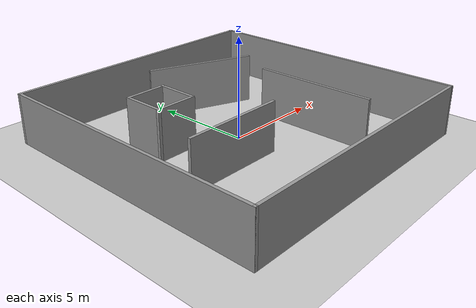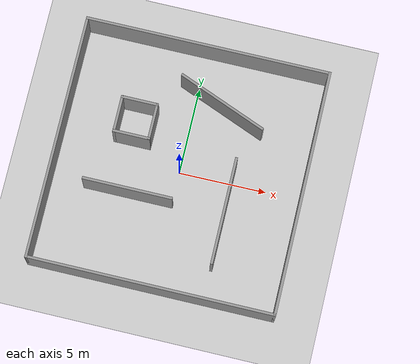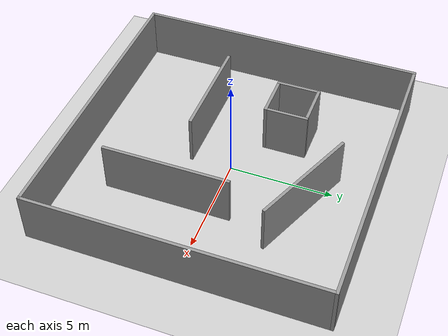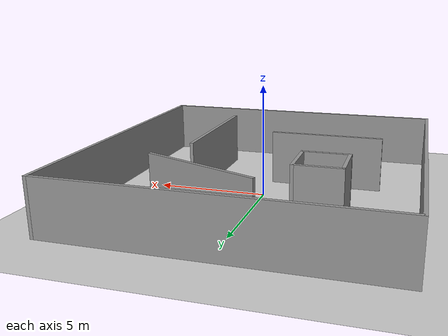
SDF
<sdf version="1.7">
 <world name="default">
  <light name="sun" type="directional">
   <pose>0 0 10 0 -0 0</pose>
   <diffuse>0.8 0.8 0.8 1</diffuse>
   <specular>0.2 0.2 0.2 1</specular>
   <attenuation>
    <range>1000</range>
    <constant>0.9</constant>
    <linear>0.01</linear>
    <quadratic>0.001</quadratic>
   </attenuation>
   <direction>-0.5 0.1 -0.9</direction>
   <spot><inner_angle>0</inner_angle><outer_angle>0</outer_angle><falloff>0</falloff></spot>
  </light>
  <model name="ground_plane">
   <static>1</static>
   <link name="link">
    <collision name="collision">
     <geometry><plane><normal>0 0 1</normal><size>100 100</size></plane></geometry>
     <surface><friction><ode><mu>100</mu><mu2>50</mu2></ode></friction></surface>
    </collision>
    <visual name="visual">
     <cast_shadows>0</cast_shadows>
     <geometry><plane><normal>0 0 1</normal><size>100 100</size></plane></geometry>
     <material>
      <script><uri>file://media/materials/scripts/gazebo.material</uri><name>Gazebo/Grey</name></script>
     </material>
    </visual>
   </link>
  </model>
  <gravity>0 0 -9.8</gravity>
  <magnetic_field>6e-06 2.3e-05 -4.2e-05</magnetic_field>
  <atmosphere type="adiabatic"/>
  <physics type="ode">
   <max_step_size>0.001</max_step_size>
   <real_time_factor>1</real_time_factor>
   <real_time_update_rate>1000</real_time_update_rate>
  </physics>
  <scene><ambient>0.4 0.4 0.4 1</ambient><background>0.7 0.7 0.7 1</background><shadows>1</shadows></scene>
  <audio><device>default</device></audio>
  <spherical_coordinates>
   <surface_model>EARTH_WGS84</surface_model>
   <latitude_deg>0</latitude_deg>
   <longitude_deg>0</longitude_deg>
   <elevation>0</elevation>
   <heading_deg>0</heading_deg>
  </spherical_coordinates>
  <model name="neurolab">
   <link name="Wall_11">
    <collision name="Wall_11_Collision">
     <geometry><box><size>2.15 0.15 2.5</size></box></geometry>
     <pose>0 0 1.25 0 -0 0</pose>
    </collision>
    <visual name="Wall_11_Visual">
     <pose>0 0 1.25 0 -0 0</pose>
     <geometry><box><size>2.15 0.15 2.5</size></box></geometry>
     <material>
      <script><uri>file://media/materials/scripts/gazebo.material</uri><name>Gazebo/Grey</name></script>
      <ambient>1 1 1 1</ambient>
     </material>
     <meta><layer>0</layer></meta>
    </visual>
    <pose>-2 2 0 0 -0 -1.5708</pose>
   </link>
   <link name="Wall_12">
    <collision name="Wall_12_Collision">
     <geometry><box><size>2.15 0.15 2.5</size></box></geometry>
     <pose>0 0 1.25 0 -0 0</pose>
    </collision>
    <visual name="Wall_12_Visual">
     <pose>0 0 1.25 0 -0 0</pose>
     <geometry><box><size>2.15 0.15 2.5</size></box></geometry>
     <material>
      <script><uri>file://media/materials/scripts/gazebo.material</uri><name>Gazebo/Grey</name></script>
      <ambient>1 1 1 1</ambient>
     </material>
     <meta><layer>0</layer></meta>
    </visual>
    <pose>-3 1 0 0 -0 3.14159</pose>
   </link>
   <link name="Wall_13">
    <collision name="Wall_13_Collision">
     <geometry><box><size>2.15 0.15 2.5</size></box></geometry>
     <pose>0 0 1.25 0 -0 0</pose>
    </collision>
    <visual name="Wall_13_Visual">
     <pose>0 0 1.25 0 -0 0</pose>
     <geometry><box><size>2.15 0.15 2.5</size></box></geometry>
     <material>
      <script><uri>file://media/materials/scripts/gazebo.material</uri><name>Gazebo/Grey</name></script>
      <ambient>1 1 1 1</ambient>
     </material>
     <meta><layer>0</layer></meta>
    </visual>
    <pose>-4 2 0 0 -0 1.5708</pose>
   </link>
   <link name="Wall_2">
    <collision name="Wall_2_Collision">
     <geometry><box><size>14.15 0.15 2.5</size></box></geometry>
     <pose>0 0 1.25 0 -0 0</pose>
    </collision>
    <visual name="Wall_2_Visual">
     <pose>0 0 1.25 0 -0 0</pose>
     <geometry><box><size>14.15 0.15 2.5</size></box></geometry>
     <material>
      <script><uri>file://media/materials/scripts/gazebo.material</uri><name>Gazebo/Grey</name></script>
      <ambient>1 1 1 1</ambient>
     </material>
     <meta><layer>0</layer></meta>
    </visual>
    <pose>0 -7 0 0 -0 0</pose>
   </link>
   <link name="Wall_21">
    <collision name="Wall_21_Collision">
     <geometry><box><size>5.53517 0.15 2.5</size></box></geometry>
     <pose>0 0 1.25 0 -0 0</pose>
    </collision>
    <visual name="Wall_21_Visual">
     <pose>0 0 1.25 0 -0 0</pose>
     <geometry><box><size>5.53517 0.15 2.5</size></box></geometry>
     <material>
      <script><uri>file://media/materials/scripts/gazebo.material</uri><name>Gazebo/Grey</name></script>
      <ambient>1 1 1 1</ambient>
     </material>
     <meta><layer>0</layer></meta>
    </visual>
    <pose>1.5 4 0 0 -0 2.76109</pose>
   </link>
   <link name="Wall_23">
    <collision name="Wall_23_Collision">
     <geometry><box><size>2.15 0.15 2.5</size></box></geometry>
     <pose>0 0 1.25 0 -0 0</pose>
    </collision>
    <visual name="Wall_23_Visual">
     <pose>0 0 1.25 0 -0 0</pose>
     <geometry><box><size>2.15 0.15 2.5</size></box></geometry>
     <material>
      <script><uri>file://media/materials/scripts/gazebo.material</uri><name>Gazebo/Grey</name></script>
      <ambient>1 1 1 1</ambient>
     </material>
     <meta><layer>0</layer></meta>
    </visual>
    <pose>-3 3 0 0 -0 3.14159</pose>
   </link>
   <link name="Wall_3">
    <collision name="Wall_3_Collision">
     <geometry><box><size>14.15 0.15 2.5</size></box></geometry>
     <pose>0 0 1.25 0 -0 0</pose>
    </collision>
    <visual name="Wall_3_Visual">
     <pose>0 0 1.25 0 -0 0</pose>
     <geometry><box><size>14.15 0.15 2.5</size></box></geometry>
     <material>
      <script><uri>file://media/materials/scripts/gazebo.material</uri><name>Gazebo/Grey</name></script>
      <ambient>1 1 1 1</ambient>
     </material>
     <meta><layer>0</layer></meta>
    </visual>
    <pose>7 0 0 0 -0 1.5708</pose>
   </link>
   <link name="Wall_4">
    <collision name="Wall_4_Collision">
     <geometry><box><size>14.15 0.15 2.5</size></box></geometry>
     <pose>0 0 1.25 0 -0 0</pose>
    </collision>
    <visual name="Wall_4_Visual">
     <pose>0 0 1.25 0 -0 0</pose>
     <geometry><box><size>14.15 0.15 2.5</size></box></geometry>
     <material>
      <script><uri>file://media/materials/scripts/gazebo.material</uri><name>Gazebo/Grey</name></script>
      <ambient>1 1 1 1</ambient>
     </material>
     <meta><layer>0</layer></meta>
    </visual>
    <pose>0 7 0 0 -0 3.14159</pose>
   </link>
   <link name="Wall_5">
    <collision name="Wall_5_Collision">
     <geometry><box><size>14.15 0.15 2.5</size></box></geometry>
     <pose>0 0 1.25 0 -0 0</pose>
    </collision>
    <visual name="Wall_5_Visual">
     <pose>0 0 1.25 0 -0 0</pose>
     <geometry><box><size>14.15 0.15 2.5</size></box></geometry>
     <material>
      <script><uri>file://media/materials/scripts/gazebo.material</uri><name>Gazebo/Grey</name></script>
      <ambient>1 1 1 1</ambient>
     </material>
     <meta><layer>0</layer></meta>
    </visual>
    <pose>-7 0 0 0 -0 -1.5708</pose>
   </link>
   <link name="Wall_7">
    <collision name="Wall_7_Collision">
     <geometry><box><size>5.15 0.15 2.5</size></box></geometry>
     <pose>0 0 1.25 0 -0 0</pose>
    </collision>
    <visual name="Wall_7_Visual">
     <pose>0 0 1.25 0 -0 0</pose>
     <geometry><box><size>5.15 0.15 2.5</size></box></geometry>
     <material>
      <script><uri>file://media/materials/scripts/gazebo.material</uri><name>Gazebo/Grey</name></script>
      <ambient>1 1 1 1</ambient>
     </material>
     <meta><layer>0</layer></meta>
    </visual>
    <pose>-2.5 -2 0 0 -0 3.14159</pose>
   </link>
   <link name="Wall_9">
    <collision name="Wall_9_Collision">
     <geometry><box><size>6.15 0.15 2.5</size></box></geometry>
     <pose>0 0 1.25 0 -0 0</pose>
    </collision>
    <visual name="Wall_9_Visual">
     <pose>0 0 1.25 0 -0 0</pose>
     <geometry><box><size>6.15 0.15 2.5</size></box></geometry>
     <material>
      <script><uri>file://media/materials/scripts/gazebo.material</uri><name>Gazebo/Grey</name></script>
      <ambient>1 1 1 1</ambient>
     </material>
     <meta><layer>0</layer></meta>
    </visual>
    <pose>3 -2 0 0 -0 -1.5708</pose>
   </link>
   <static>1</static>
  </model>
 </world>
</sdf>
